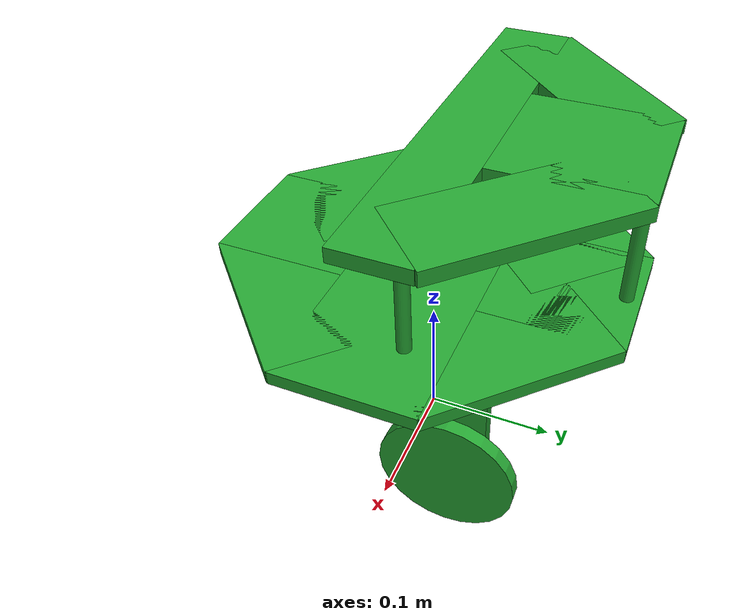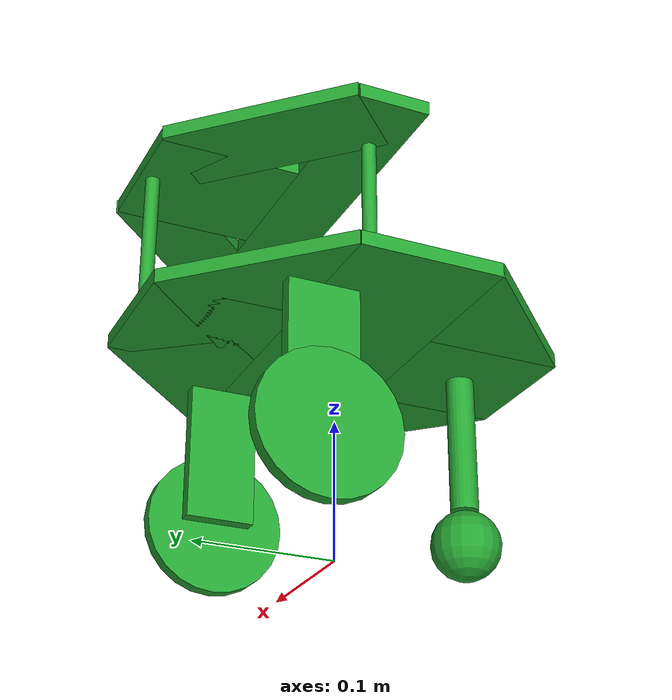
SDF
<?xml version='1.0'?>
<sdf version='1.6'>
  <model name='devRobot'>
    <link name='base'>
      <pose frame=''>0 0 0.155 0 -0 0</pose>
      <inertial>
        <mass>1.5</mass>
        <inertia>
          <ixx>0.166667</ixx>
          <ixy>0</ixy>
          <ixz>0</ixz>
          <iyy>0.166667</iyy>
          <iyz>0</iyz>
          <izz>0.166667</izz>
        </inertia>
        <pose frame=''>0 0 0 0 -0 0</pose>
      </inertial>
      <self_collide>0</self_collide>
      <kinematic>0</kinematic>
      <gravity>1</gravity>
      <visual name='visual'>
        <pose frame=''>0 0 0 0 -0 0</pose>
        <geometry>
          <box>
            <size>0.3 0.1 0.01</size>
          </box>
        </geometry>
        <material>
          <lighting>1</lighting>
          <script>
            <uri>file://media/materials/scripts/gazebo.material</uri>
            <name>Gazebo/Green</name>
          </script>
          <shader type='pixel'>
            <normal_map>__default__</normal_map>
          </shader>
          <ambient>0 0.3 0 1</ambient>
          <diffuse>0 0.7 0 1</diffuse>
          <specular>0 0.01 0 1</specular>
          <emissive>0 0 0 1</emissive>
        </material>
        <transparency>0</transparency>
        <cast_shadows>1</cast_shadows>
      </visual>
      <collision name='collision'>
        <laser_retro>0</laser_retro>
        <max_contacts>10</max_contacts>
        <pose frame=''>0 0 0 0 -0 0</pose>
        <geometry>
          <box>
            <size>0.3 0.1 0.01</size>
          </box>
        </geometry>
        <surface>
          <friction>
            <ode>
              <mu>1</mu>
              <mu2>1</mu2>
              <fdir1>0 0 0</fdir1>
              <slip1>0</slip1>
              <slip2>0</slip2>
            </ode>
            <torsional>
              <coefficient>1</coefficient>
              <patch_radius>0</patch_radius>
              <surface_radius>0</surface_radius>
              <use_patch_radius>1</use_patch_radius>
              <ode>
                <slip>0</slip>
              </ode>
            </torsional>
          </friction>
          <bounce>
            <restitution_coefficient>0</restitution_coefficient>
            <threshold>1e+06</threshold>
          </bounce>
          <contact>
            <collide_without_contact>0</collide_without_contact>
            <collide_without_contact_bitmask>1</collide_without_contact_bitmask>
            <collide_bitmask>1</collide_bitmask>
            <ode>
              <soft_cfm>0</soft_cfm>
              <soft_erp>0.2</soft_erp>
              <kp>1e+13</kp>
              <kd>1</kd>
              <max_vel>0.01</max_vel>
              <min_depth>0</min_depth>
            </ode>
            <bullet>
              <split_impulse>1</split_impulse>
              <split_impulse_penetration_threshold>-0.01</split_impulse_penetration_threshold>
              <soft_cfm>0</soft_cfm>
              <soft_erp>0.2</soft_erp>
              <kp>1e+13</kp>
              <kd>1</kd>
            </bullet>
          </contact>
        </surface>
      </collision>
    </link>
    <link name='back'>
      <pose frame=''>-0 -0.1 0.155 0 -0 0</pose>
      <inertial>
        <mass>2</mass>
        <inertia>
          <ixx>0.166667</ixx>
          <ixy>0</ixy>
          <ixz>0</ixz>
          <iyy>0.166667</iyy>
          <iyz>0</iyz>
          <izz>0.166667</izz>
        </inertia>
        <pose frame=''>0 0 0 0 -0 0</pose>
      </inertial>
      <self_collide>0</self_collide>
      <kinematic>0</kinematic>
      <visual name='visual'>
        <pose frame=''>0 0 0 0 -0 0</pose>
        <geometry>
          <box>
            <size>0.1 0.1 0.01</size>
          </box>
        </geometry>
        <material>
          <lighting>1</lighting>
          <script>
            <uri>file://media/materials/scripts/gazebo.material</uri>
            <name>Gazebo/Green</name>
          </script>
          <shader type='pixel'>
            <normal_map>__default__</normal_map>
          </shader>
          <ambient>0 0.3 0 1</ambient>
          <diffuse>0 0.7 0 1</diffuse>
          <specular>0 0.01 0 1</specular>
          <emissive>0 0 0 1</emissive>
        </material>
        <transparency>0</transparency>
        <cast_shadows>1</cast_shadows>
      </visual>
      <collision name='collision'>
        <laser_retro>0</laser_retro>
        <max_contacts>10</max_contacts>
        <pose frame=''>0 0 0 0 -0 0</pose>
        <geometry>
          <box>
            <size>0.1 0.1 0.01</size>
          </box>
        </geometry>
        <surface>
          <friction>
            <ode>
              <mu>1</mu>
              <mu2>1</mu2>
              <fdir1>0 0 0</fdir1>
              <slip1>0</slip1>
              <slip2>0</slip2>
            </ode>
            <torsional>
              <coefficient>1</coefficient>
              <patch_radius>0</patch_radius>
              <surface_radius>0</surface_radius>
              <use_patch_radius>1</use_patch_radius>
              <ode>
                <slip>0</slip>
              </ode>
            </torsional>
          </friction>
          <bounce>
            <restitution_coefficient>0</restitution_coefficient>
            <threshold>1e+06</threshold>
          </bounce>
          <contact>
            <collide_without_contact>0</collide_without_contact>
            <collide_without_contact_bitmask>1</collide_without_contact_bitmask>
            <collide_bitmask>1</collide_bitmask>
            <ode>
              <soft_cfm>0</soft_cfm>
              <soft_erp>0.2</soft_erp>
              <kp>1e+13</kp>
              <kd>1</kd>
              <max_vel>0.01</max_vel>
              <min_depth>0</min_depth>
            </ode>
            <bullet>
              <split_impulse>1</split_impulse>
              <split_impulse_penetration_threshold>-0.01</split_impulse_penetration_threshold>
              <soft_cfm>0</soft_cfm>
              <soft_erp>0.2</soft_erp>
              <kp>1e+13</kp>
              <kd>1</kd>
            </bullet>
          </contact>
        </surface>
      </collision>
    </link>
    <link name='backLeft'>
      <pose frame=''>-0.065 -0.065 0.155 0 0 -0.78535</pose>
      <inertial>
        <mass>0.1</mass>
        <inertia>
          <ixx>0.166667</ixx>
          <ixy>0</ixy>
          <ixz>0</ixz>
          <iyy>0.166667</iyy>
          <iyz>0</iyz>
          <izz>0.166667</izz>
        </inertia>
        <pose frame=''>0 0 0 0 -0 0</pose>
      </inertial>
      <self_collide>0</self_collide>
      <kinematic>0</kinematic>
      <visual name='visual'>
        <pose frame=''>0 0 0 0 -0 0</pose>
        <geometry>
          <box>
            <size>0.14 0.1 0.01</size>
          </box>
        </geometry>
        <material>
          <lighting>1</lighting>
          <script>
            <uri>file://media/materials/scripts/gazebo.material</uri>
            <name>Gazebo/Green</name>
          </script>
          <shader type='pixel'>
            <normal_map>__default__</normal_map>
          </shader>
          <ambient>0 0.3 0 1</ambient>
          <diffuse>0 0.7 0 1</diffuse>
          <specular>0 0.01 0 1</specular>
          <emissive>0 0 0 1</emissive>
        </material>
        <transparency>0</transparency>
        <cast_shadows>1</cast_shadows>
      </visual>
      <collision name='collision'>
        <laser_retro>0</laser_retro>
        <max_contacts>10</max_contacts>
        <pose frame=''>0 0 0 0 -0 0</pose>
        <geometry>
          <box>
            <size>0.14 0.1 0.01</size>
          </box>
        </geometry>
        <surface>
          <friction>
            <ode>
              <mu>1</mu>
              <mu2>1</mu2>
              <fdir1>0 0 0</fdir1>
              <slip1>0</slip1>
              <slip2>0</slip2>
            </ode>
            <torsional>
              <coefficient>1</coefficient>
              <patch_radius>0</patch_radius>
              <surface_radius>0</surface_radius>
              <use_patch_radius>1</use_patch_radius>
              <ode>
                <slip>0</slip>
              </ode>
            </torsional>
          </friction>
          <bounce>
            <restitution_coefficient>0</restitution_coefficient>
            <threshold>1e+06</threshold>
          </bounce>
          <contact>
            <collide_without_contact>0</collide_without_contact>
            <collide_without_contact_bitmask>1</collide_without_contact_bitmask>
            <collide_bitmask>1</collide_bitmask>
            <ode>
              <soft_cfm>0</soft_cfm>
              <soft_erp>0.2</soft_erp>
              <kp>1e+13</kp>
              <kd>1</kd>
              <max_vel>0.01</max_vel>
              <min_depth>0</min_depth>
            </ode>
            <bullet>
              <split_impulse>1</split_impulse>
              <split_impulse_penetration_threshold>-0.01</split_impulse_penetration_threshold>
              <soft_cfm>0</soft_cfm>
              <soft_erp>0.2</soft_erp>
              <kp>1e+13</kp>
              <kd>1</kd>
            </bullet>
          </contact>
        </surface>
      </collision>
    </link>
    <link name='backRight'>
      <pose frame=''>0.065 -0.065 0.155 0 -0 0.78535</pose>
      <inertial>
        <mass>0.1</mass>
        <inertia>
          <ixx>0.166667</ixx>
          <ixy>0</ixy>
          <ixz>0</ixz>
          <iyy>0.166667</iyy>
          <iyz>0</iyz>
          <izz>0.166667</izz>
        </inertia>
        <pose frame=''>0 0 0 0 -0 0</pose>
      </inertial>
      <self_collide>0</self_collide>
      <kinematic>0</kinematic>
      <visual name='visual'>
        <pose frame=''>0 0 0 0 -0 0</pose>
        <geometry>
          <box>
            <size>0.14 0.1 0.01</size>
          </box>
        </geometry>
        <material>
          <lighting>1</lighting>
          <script>
            <uri>file://media/materials/scripts/gazebo.material</uri>
            <name>Gazebo/Green</name>
          </script>
          <shader type='pixel'>
            <normal_map>__default__</normal_map>
          </shader>
          <ambient>0 0.3 0 1</ambient>
          <diffuse>0 0.7 0 1</diffuse>
          <specular>0 0.01 0 1</specular>
          <emissive>0 0 0 1</emissive>
        </material>
        <transparency>0</transparency>
        <cast_shadows>1</cast_shadows>
      </visual>
      <collision name='collision'>
        <laser_retro>0</laser_retro>
        <max_contacts>10</max_contacts>
        <pose frame=''>0 0 0 0 -0 0</pose>
        <geometry>
          <box>
            <size>0.14 0.1 0.01</size>
          </box>
        </geometry>
        <surface>
          <friction>
            <ode>
              <mu>1</mu>
              <mu2>1</mu2>
              <fdir1>0 0 0</fdir1>
              <slip1>0</slip1>
              <slip2>0</slip2>
            </ode>
            <torsional>
              <coefficient>1</coefficient>
              <patch_radius>0</patch_radius>
              <surface_radius>0</surface_radius>
              <use_patch_radius>1</use_patch_radius>
              <ode>
                <slip>0</slip>
              </ode>
            </torsional>
          </friction>
          <bounce>
            <restitution_coefficient>0</restitution_coefficient>
            <threshold>1e+06</threshold>
          </bounce>
          <contact>
            <collide_without_contact>0</collide_without_contact>
            <collide_without_contact_bitmask>1</collide_without_contact_bitmask>
            <collide_bitmask>1</collide_bitmask>
            <ode>
              <soft_cfm>0</soft_cfm>
              <soft_erp>0.2</soft_erp>
              <kp>1e+13</kp>
              <kd>1</kd>
              <max_vel>0.01</max_vel>
              <min_depth>0</min_depth>
            </ode>
            <bullet>
              <split_impulse>1</split_impulse>
              <split_impulse_penetration_threshold>-0.01</split_impulse_penetration_threshold>
              <soft_cfm>0</soft_cfm>
              <soft_erp>0.2</soft_erp>
              <kp>1e+13</kp>
              <kd>1</kd>
            </bullet>
          </contact>
        </surface>
      </collision>
    </link>
    <link name='front'>
      <pose frame=''>-0 0.1 0.155 0 -0 0</pose>
      <inertial>
        <mass>0.1</mass>
        <inertia>
          <ixx>0.166667</ixx>
          <ixy>0</ixy>
          <ixz>0</ixz>
          <iyy>0.166667</iyy>
          <iyz>0</iyz>
          <izz>0.166667</izz>
        </inertia>
        <pose frame=''>0 0 0 0 -0 0</pose>
      </inertial>
      <self_collide>0</self_collide>
      <kinematic>0</kinematic>
      <visual name='visual'>
        <pose frame=''>0 0 0 0 -0 0</pose>
        <geometry>
          <box>
            <size>0.1 0.1 0.01</size>
          </box>
        </geometry>
        <material>
          <lighting>1</lighting>
          <script>
            <uri>file://media/materials/scripts/gazebo.material</uri>
            <name>Gazebo/Green</name>
          </script>
          <shader type='pixel'>
            <normal_map>__default__</normal_map>
          </shader>
          <ambient>0 0.3 0 1</ambient>
          <diffuse>0 0.7 0 1</diffuse>
          <specular>0 0.01 0 1</specular>
          <emissive>0 0 0 1</emissive>
        </material>
        <transparency>0</transparency>
        <cast_shadows>1</cast_shadows>
      </visual>
      <collision name='collision'>
        <laser_retro>0</laser_retro>
        <max_contacts>10</max_contacts>
        <pose frame=''>0 0 0 0 -0 0</pose>
        <geometry>
          <box>
            <size>0.1 0.1 0.01</size>
          </box>
        </geometry>
        <surface>
          <friction>
            <ode>
              <mu>1</mu>
              <mu2>1</mu2>
              <fdir1>0 0 0</fdir1>
              <slip1>0</slip1>
              <slip2>0</slip2>
            </ode>
            <torsional>
              <coefficient>1</coefficient>
              <patch_radius>0</patch_radius>
              <surface_radius>0</surface_radius>
              <use_patch_radius>1</use_patch_radius>
              <ode>
                <slip>0</slip>
              </ode>
            </torsional>
          </friction>
          <bounce>
            <restitution_coefficient>0</restitution_coefficient>
            <threshold>1e+06</threshold>
          </bounce>
          <contact>
            <collide_without_contact>0</collide_without_contact>
            <collide_without_contact_bitmask>1</collide_without_contact_bitmask>
            <collide_bitmask>1</collide_bitmask>
            <ode>
              <soft_cfm>0</soft_cfm>
              <soft_erp>0.2</soft_erp>
              <kp>1e+13</kp>
              <kd>1</kd>
              <max_vel>0.01</max_vel>
              <min_depth>0</min_depth>
            </ode>
            <bullet>
              <split_impulse>1</split_impulse>
              <split_impulse_penetration_threshold>-0.01</split_impulse_penetration_threshold>
              <soft_cfm>0</soft_cfm>
              <soft_erp>0.2</soft_erp>
              <kp>1e+13</kp>
              <kd>1</kd>
            </bullet>
          </contact>
        </surface>
      </collision>
    </link>
    <link name='frontLeft'>
      <pose frame=''>-0.065 0.065 0.155 0 -0 0.78535</pose>
      <inertial>
        <mass>0.1</mass>
        <inertia>
          <ixx>0.166667</ixx>
          <ixy>0</ixy>
          <ixz>0</ixz>
          <iyy>0.166667</iyy>
          <iyz>0</iyz>
          <izz>0.166667</izz>
        </inertia>
        <pose frame=''>0 0 0 0 -0 0</pose>
      </inertial>
      <self_collide>0</self_collide>
      <kinematic>0</kinematic>
      <visual name='visual'>
        <pose frame=''>0 0 0 0 -0 0</pose>
        <geometry>
          <box>
            <size>0.14 0.1 0.01</size>
          </box>
        </geometry>
        <material>
          <lighting>1</lighting>
          <script>
            <uri>file://media/materials/scripts/gazebo.material</uri>
            <name>Gazebo/Green</name>
          </script>
          <shader type='pixel'>
            <normal_map>__default__</normal_map>
          </shader>
          <ambient>0 0.3 0 1</ambient>
          <diffuse>0 0.7 0 1</diffuse>
          <specular>0 0.01 0 1</specular>
          <emissive>0 0 0 1</emissive>
        </material>
        <transparency>0</transparency>
        <cast_shadows>1</cast_shadows>
      </visual>
      <collision name='collision'>
        <laser_retro>0</laser_retro>
        <max_contacts>10</max_contacts>
        <pose frame=''>0 0 0 0 -0 0</pose>
        <geometry>
          <box>
            <size>0.14 0.1 0.01</size>
          </box>
        </geometry>
        <surface>
          <friction>
            <ode>
              <mu>1</mu>
              <mu2>1</mu2>
              <fdir1>0 0 0</fdir1>
              <slip1>0</slip1>
              <slip2>0</slip2>
            </ode>
            <torsional>
              <coefficient>1</coefficient>
              <patch_radius>0</patch_radius>
              <surface_radius>0</surface_radius>
              <use_patch_radius>1</use_patch_radius>
              <ode>
                <slip>0</slip>
              </ode>
            </torsional>
          </friction>
          <bounce>
            <restitution_coefficient>0</restitution_coefficient>
            <threshold>1e+06</threshold>
          </bounce>
          <contact>
            <collide_without_contact>0</collide_without_contact>
            <collide_without_contact_bitmask>1</collide_without_contact_bitmask>
            <collide_bitmask>1</collide_bitmask>
            <ode>
              <soft_cfm>0</soft_cfm>
              <soft_erp>0.2</soft_erp>
              <kp>1e+13</kp>
              <kd>1</kd>
              <max_vel>0.01</max_vel>
              <min_depth>0</min_depth>
            </ode>
            <bullet>
              <split_impulse>1</split_impulse>
              <split_impulse_penetration_threshold>-0.01</split_impulse_penetration_threshold>
              <soft_cfm>0</soft_cfm>
              <soft_erp>0.2</soft_erp>
              <kp>1e+13</kp>
              <kd>1</kd>
            </bullet>
          </contact>
        </surface>
      </collision>
    </link>
    <link name='frontRight'>
      <pose frame=''>0.065 0.065 0.155 0 0 -0.78535</pose>
      <inertial>
        <mass>0.1</mass>
        <inertia>
          <ixx>0.166667</ixx>
          <ixy>0</ixy>
          <ixz>0</ixz>
          <iyy>0.166667</iyy>
          <iyz>0</iyz>
          <izz>0.166667</izz>
        </inertia>
        <pose frame=''>0 0 0 0 -0 0</pose>
      </inertial>
      <self_collide>0</self_collide>
      <kinematic>0</kinematic>
      <visual name='visual'>
        <pose frame=''>0 0 0 0 -0 0</pose>
        <geometry>
          <box>
            <size>0.14 0.1 0.01</size>
          </box>
        </geometry>
        <material>
          <lighting>1</lighting>
          <script>
            <uri>file://media/materials/scripts/gazebo.material</uri>
            <name>Gazebo/Green</name>
          </script>
          <shader type='pixel'>
            <normal_map>__default__</normal_map>
          </shader>
          <ambient>0 0.3 0 1</ambient>
          <diffuse>0 0.7 0 1</diffuse>
          <specular>0 0.01 0 1</specular>
          <emissive>0 0 0 1</emissive>
        </material>
        <transparency>0</transparency>
        <cast_shadows>1</cast_shadows>
      </visual>
      <collision name='collision'>
        <laser_retro>0</laser_retro>
        <max_contacts>10</max_contacts>
        <pose frame=''>0 0 0 0 -0 0</pose>
        <geometry>
          <box>
            <size>0.14 0.1 0.01</size>
          </box>
        </geometry>
        <surface>
          <friction>
            <ode>
              <mu>1</mu>
              <mu2>1</mu2>
              <fdir1>0 0 0</fdir1>
              <slip1>0</slip1>
              <slip2>0</slip2>
            </ode>
            <torsional>
              <coefficient>1</coefficient>
              <patch_radius>0</patch_radius>
              <surface_radius>0</surface_radius>
              <use_patch_radius>1</use_patch_radius>
              <ode>
                <slip>0</slip>
              </ode>
            </torsional>
          </friction>
          <bounce>
            <restitution_coefficient>0</restitution_coefficient>
            <threshold>1e+06</threshold>
          </bounce>
          <contact>
            <collide_without_contact>0</collide_without_contact>
            <collide_without_contact_bitmask>1</collide_without_contact_bitmask>
            <collide_bitmask>1</collide_bitmask>
            <ode>
              <soft_cfm>0</soft_cfm>
              <soft_erp>0.2</soft_erp>
              <kp>1e+13</kp>
              <kd>1</kd>
              <max_vel>0.01</max_vel>
              <min_depth>0</min_depth>
            </ode>
            <bullet>
              <split_impulse>1</split_impulse>
              <split_impulse_penetration_threshold>-0.01</split_impulse_penetration_threshold>
              <soft_cfm>0</soft_cfm>
              <soft_erp>0.2</soft_erp>
              <kp>1e+13</kp>
              <kd>1</kd>
            </bullet>
          </contact>
        </surface>
      </collision>
    </link>
    <link name='link_0'>
      <pose frame=''>0.1 0.05 0.05 -3e-06 1.5707 -3e-06</pose>
      <inertial>
        <mass>1</mass>
        <inertia>
          <ixx>0.145833</ixx>
          <ixy>0</ixy>
          <ixz>0</ixz>
          <iyy>0.145833</iyy>
          <iyz>0</iyz>
          <izz>0.125</izz>
        </inertia>
        <pose frame=''>0 0 0 0 -0 0</pose>
      </inertial>
      <self_collide>0</self_collide>
      <kinematic>0</kinematic>
      <visual name='visual'>
        <pose frame=''>0 0 0 0 -0 0</pose>
        <geometry>
          <cylinder>
            <radius>0.05</radius>
            <length>0.01</length>
          </cylinder>
        </geometry>
        <material>
          <lighting>1</lighting>
          <script>
            <uri>file://media/materials/scripts/gazebo.material</uri>
            <name>Gazebo/Green</name>
          </script>
          <shader type='pixel'>
            <normal_map>__default__</normal_map>
          </shader>
          <ambient>0 0.3 0 1</ambient>
          <diffuse>0 0.7 0 1</diffuse>
          <specular>0 0.01 0 1</specular>
          <emissive>0 0 0 1</emissive>
        </material>
        <transparency>0</transparency>
        <cast_shadows>1</cast_shadows>
      </visual>
      <collision name='collision'>
        <laser_retro>0</laser_retro>
        <max_contacts>10</max_contacts>
        <pose frame=''>0 0 0 0 -0 0</pose>
        <geometry>
          <cylinder>
            <radius>0.05</radius>
            <length>0.01</length>
          </cylinder>
        </geometry>
        <surface>
          <friction>
            <ode>
              <mu>1</mu>
              <mu2>1</mu2>
              <fdir1>0 0 0</fdir1>
              <slip1>0</slip1>
              <slip2>0</slip2>
            </ode>
            <torsional>
              <coefficient>1</coefficient>
              <patch_radius>0</patch_radius>
              <surface_radius>0</surface_radius>
              <use_patch_radius>1</use_patch_radius>
              <ode>
                <slip>0</slip>
              </ode>
            </torsional>
          </friction>
          <bounce>
            <restitution_coefficient>0</restitution_coefficient>
            <threshold>1e+06</threshold>
          </bounce>
          <contact>
            <collide_without_contact>0</collide_without_contact>
            <collide_without_contact_bitmask>1</collide_without_contact_bitmask>
            <collide_bitmask>1</collide_bitmask>
            <ode>
              <soft_cfm>0</soft_cfm>
              <soft_erp>0.2</soft_erp>
              <kp>1e+13</kp>
              <kd>1</kd>
              <max_vel>0.01</max_vel>
              <min_depth>0</min_depth>
            </ode>
            <bullet>
              <split_impulse>1</split_impulse>
              <split_impulse_penetration_threshold>-0.01</split_impulse_penetration_threshold>
              <soft_cfm>0</soft_cfm>
              <soft_erp>0.2</soft_erp>
              <kp>1e+13</kp>
              <kd>1</kd>
            </bullet>
          </contact>
        </surface>
      </collision>
    </link>
    <link name='link_0_clone'>
      <pose frame=''>-0.1 0.05 0.05 -3e-06 1.5707 -3e-06</pose>
      <inertial>
        <mass>1</mass>
        <inertia>
          <ixx>0.145833</ixx>
          <ixy>0</ixy>
          <ixz>0</ixz>
          <iyy>0.145833</iyy>
          <iyz>0</iyz>
          <izz>0.125</izz>
        </inertia>
        <pose frame=''>0 0 0 0 -0 0</pose>
      </inertial>
      <self_collide>0</self_collide>
      <kinematic>0</kinematic>
      <visual name='visual'>
        <pose frame=''>0 0 0 0 -0 0</pose>
        <geometry>
          <cylinder>
            <radius>0.05</radius>
            <length>0.01</length>
          </cylinder>
        </geometry>
        <material>
          <lighting>1</lighting>
          <script>
            <uri>file://media/materials/scripts/gazebo.material</uri>
            <name>Gazebo/Green</name>
          </script>
          <shader type='pixel'>
            <normal_map>__default__</normal_map>
          </shader>
          <ambient>0 0.3 0 1</ambient>
          <diffuse>0 0.7 0 1</diffuse>
          <specular>0 0.01 0 1</specular>
          <emissive>0 0 0 1</emissive>
        </material>
        <transparency>0</transparency>
        <cast_shadows>1</cast_shadows>
      </visual>
      <collision name='collision'>
        <laser_retro>0</laser_retro>
        <max_contacts>10</max_contacts>
        <pose frame=''>0 0 0 0 -0 0</pose>
        <geometry>
          <cylinder>
            <radius>0.05</radius>
            <length>0.01</length>
          </cylinder>
        </geometry>
        <surface>
          <friction>
            <ode>
              <mu>1</mu>
              <mu2>1</mu2>
              <fdir1>0 0 0</fdir1>
              <slip1>0</slip1>
              <slip2>0</slip2>
            </ode>
            <torsional>
              <coefficient>1</coefficient>
              <patch_radius>0</patch_radius>
              <surface_radius>0</surface_radius>
              <use_patch_radius>1</use_patch_radius>
              <ode>
                <slip>0</slip>
              </ode>
            </torsional>
          </friction>
          <bounce>
            <restitution_coefficient>0</restitution_coefficient>
            <threshold>1e+06</threshold>
          </bounce>
          <contact>
            <collide_without_contact>0</collide_without_contact>
            <collide_without_contact_bitmask>1</collide_without_contact_bitmask>
            <collide_bitmask>1</collide_bitmask>
            <ode>
              <soft_cfm>0</soft_cfm>
              <soft_erp>0.2</soft_erp>
              <kp>1e+13</kp>
              <kd>1</kd>
              <max_vel>0.01</max_vel>
              <min_depth>0</min_depth>
            </ode>
            <bullet>
              <split_impulse>1</split_impulse>
              <split_impulse_penetration_threshold>-0.01</split_impulse_penetration_threshold>
              <soft_cfm>0</soft_cfm>
              <soft_erp>0.2</soft_erp>
              <kp>1e+13</kp>
              <kd>1</kd>
            </bullet>
          </contact>
        </surface>
      </collision>
    </link>
    <link name='link_1'>
      <pose frame=''>0.09 0.05 0.1 0 -0 0</pose>
      <inertial>
        <mass>1</mass>
        <inertia>
          <ixx>0.166667</ixx>
          <ixy>0</ixy>
          <ixz>0</ixz>
          <iyy>0.166667</iyy>
          <iyz>0</iyz>
          <izz>0.166667</izz>
        </inertia>
        <pose frame=''>0 0 0 0 -0 0</pose>
      </inertial>
      <self_collide>0</self_collide>
      <kinematic>0</kinematic>
      <visual name='visual'>
        <pose frame=''>0 0 0 0 -0 0</pose>
        <geometry>
          <box>
            <size>0.01 0.05 0.1</size>
          </box>
        </geometry>
        <material>
          <lighting>1</lighting>
          <script>
            <uri>file://media/materials/scripts/gazebo.material</uri>
            <name>Gazebo/Green</name>
          </script>
          <shader type='pixel'>
            <normal_map>__default__</normal_map>
          </shader>
          <ambient>0 0.3 0 1</ambient>
          <diffuse>0 0.7 0 1</diffuse>
          <specular>0 0.01 0 1</specular>
          <emissive>0 0 0 1</emissive>
        </material>
        <transparency>0</transparency>
        <cast_shadows>1</cast_shadows>
      </visual>
      <collision name='collision'>
        <laser_retro>0</laser_retro>
        <max_contacts>10</max_contacts>
        <pose frame=''>0 0 0 0 -0 0</pose>
        <geometry>
          <box>
            <size>0.01 0.05 0.1</size>
          </box>
        </geometry>
        <surface>
          <friction>
            <ode>
              <mu>1</mu>
              <mu2>1</mu2>
              <fdir1>0 0 0</fdir1>
              <slip1>0</slip1>
              <slip2>0</slip2>
            </ode>
            <torsional>
              <coefficient>1</coefficient>
              <patch_radius>0</patch_radius>
              <surface_radius>0</surface_radius>
              <use_patch_radius>1</use_patch_radius>
              <ode>
                <slip>0</slip>
              </ode>
            </torsional>
          </friction>
          <bounce>
            <restitution_coefficient>0</restitution_coefficient>
            <threshold>1e+06</threshold>
          </bounce>
          <contact>
            <collide_without_contact>0</collide_without_contact>
            <collide_without_contact_bitmask>1</collide_without_contact_bitmask>
            <collide_bitmask>1</collide_bitmask>
            <ode>
              <soft_cfm>0</soft_cfm>
              <soft_erp>0.2</soft_erp>
              <kp>1e+13</kp>
              <kd>1</kd>
              <max_vel>0.01</max_vel>
              <min_depth>0</min_depth>
            </ode>
            <bullet>
              <split_impulse>1</split_impulse>
              <split_impulse_penetration_threshold>-0.01</split_impulse_penetration_threshold>
              <soft_cfm>0</soft_cfm>
              <soft_erp>0.2</soft_erp>
              <kp>1e+13</kp>
              <kd>1</kd>
            </bullet>
          </contact>
        </surface>
      </collision>
    </link>
    <link name='link_1_clone'>
      <pose frame=''>-0.09 0.05 0.1 0 -0 0</pose>
      <inertial>
        <mass>1</mass>
        <inertia>
          <ixx>0.166667</ixx>
          <ixy>0</ixy>
          <ixz>0</ixz>
          <iyy>0.166667</iyy>
          <iyz>0</iyz>
          <izz>0.166667</izz>
        </inertia>
        <pose frame=''>0 0 0 0 -0 0</pose>
      </inertial>
      <self_collide>0</self_collide>
      <kinematic>0</kinematic>
      <visual name='visual'>
        <pose frame=''>0 0 0 0 -0 0</pose>
        <geometry>
          <box>
            <size>0.01 0.05 0.1</size>
          </box>
        </geometry>
        <material>
          <lighting>1</lighting>
          <script>
            <uri>file://media/materials/scripts/gazebo.material</uri>
            <name>Gazebo/Green</name>
          </script>
          <shader type='pixel'>
            <normal_map>__default__</normal_map>
          </shader>
          <ambient>0 0.3 0 1</ambient>
          <diffuse>0 0.7 0 1</diffuse>
          <specular>0 0.01 0 1</specular>
          <emissive>0 0 0 1</emissive>
        </material>
        <transparency>0</transparency>
        <cast_shadows>1</cast_shadows>
      </visual>
      <collision name='collision'>
        <laser_retro>0</laser_retro>
        <max_contacts>10</max_contacts>
        <pose frame=''>0 0 0 0 -0 0</pose>
        <geometry>
          <box>
            <size>0.01 0.05 0.1</size>
          </box>
        </geometry>
        <surface>
          <friction>
            <ode>
              <mu>1</mu>
              <mu2>1</mu2>
              <fdir1>0 0 0</fdir1>
              <slip1>0</slip1>
              <slip2>0</slip2>
            </ode>
            <torsional>
              <coefficient>1</coefficient>
              <patch_radius>0</patch_radius>
              <surface_radius>0</surface_radius>
              <use_patch_radius>1</use_patch_radius>
              <ode>
                <slip>0</slip>
              </ode>
            </torsional>
          </friction>
          <bounce>
            <restitution_coefficient>0</restitution_coefficient>
            <threshold>1e+06</threshold>
          </bounce>
          <contact>
            <collide_without_contact>0</collide_without_contact>
            <collide_without_contact_bitmask>1</collide_without_contact_bitmask>
            <collide_bitmask>1</collide_bitmask>
            <ode>
              <soft_cfm>0</soft_cfm>
              <soft_erp>0.2</soft_erp>
              <kp>1e+13</kp>
              <kd>1</kd>
              <max_vel>0.01</max_vel>
              <min_depth>0</min_depth>
            </ode>
            <bullet>
              <split_impulse>1</split_impulse>
              <split_impulse_penetration_threshold>-0.01</split_impulse_penetration_threshold>
              <soft_cfm>0</soft_cfm>
              <soft_erp>0.2</soft_erp>
              <kp>1e+13</kp>
              <kd>1</kd>
            </bullet>
          </contact>
        </surface>
      </collision>
    </link>
    <link name='link_2'>
      <pose frame=''>-0 -0.1 0.1 0 -0 0</pose>
      <inertial>
        <mass>1</mass>
        <inertia>
          <ixx>0.145833</ixx>
          <ixy>0</ixy>
          <ixz>0</ixz>
          <iyy>0.145833</iyy>
          <iyz>0</iyz>
          <izz>0.125</izz>
        </inertia>
        <pose frame=''>0 0 0 0 -0 0</pose>
      </inertial>
      <self_collide>0</self_collide>
      <kinematic>0</kinematic>
      <visual name='visual'>
        <pose frame=''>0 0 0 0 -0 0</pose>
        <geometry>
          <cylinder>
            <radius>0.01</radius>
            <length>0.1</length>
          </cylinder>
        </geometry>
        <material>
          <lighting>1</lighting>
          <script>
            <uri>file://media/materials/scripts/gazebo.material</uri>
            <name>Gazebo/Green</name>
          </script>
          <shader type='pixel'>
            <normal_map>__default__</normal_map>
          </shader>
          <ambient>0 0.3 0 1</ambient>
          <diffuse>0 0.7 0 1</diffuse>
          <specular>0 0.01 0 1</specular>
          <emissive>0 0 0 1</emissive>
        </material>
        <transparency>0</transparency>
        <cast_shadows>1</cast_shadows>
      </visual>
      <collision name='collision'>
        <laser_retro>0</laser_retro>
        <max_contacts>10</max_contacts>
        <pose frame=''>0 0 0 0 -0 0</pose>
        <geometry>
          <cylinder>
            <radius>0.01</radius>
            <length>0.1</length>
          </cylinder>
        </geometry>
        <surface>
          <friction>
            <ode>
              <mu>1</mu>
              <mu2>1</mu2>
              <fdir1>0 0 0</fdir1>
              <slip1>0</slip1>
              <slip2>0</slip2>
            </ode>
            <torsional>
              <coefficient>1</coefficient>
              <patch_radius>0</patch_radius>
              <surface_radius>0</surface_radius>
              <use_patch_radius>1</use_patch_radius>
              <ode>
                <slip>0</slip>
              </ode>
            </torsional>
          </friction>
          <bounce>
            <restitution_coefficient>0</restitution_coefficient>
            <threshold>1e+06</threshold>
          </bounce>
          <contact>
            <collide_without_contact>0</collide_without_contact>
            <collide_without_contact_bitmask>1</collide_without_contact_bitmask>
            <collide_bitmask>1</collide_bitmask>
            <ode>
              <soft_cfm>0</soft_cfm>
              <soft_erp>0.2</soft_erp>
              <kp>1e+13</kp>
              <kd>1</kd>
              <max_vel>0.01</max_vel>
              <min_depth>0</min_depth>
            </ode>
            <bullet>
              <split_impulse>1</split_impulse>
              <split_impulse_penetration_threshold>-0.01</split_impulse_penetration_threshold>
              <soft_cfm>0</soft_cfm>
              <soft_erp>0.2</soft_erp>
              <kp>1e+13</kp>
              <kd>1</kd>
            </bullet>
          </contact>
        </surface>
      </collision>
    </link>
    <link name='link_3'>
      <pose frame=''>-0 -0.1 0.025 0 -0 0</pose>
      <inertial>
        <mass>1</mass>
        <inertia>
          <ixx>0.1</ixx>
          <ixy>0</ixy>
          <ixz>0</ixz>
          <iyy>0.1</iyy>
          <iyz>0</iyz>
          <izz>0.1</izz>
        </inertia>
        <pose frame=''>0 0 0 0 -0 0</pose>
      </inertial>
      <self_collide>0</self_collide>
      <kinematic>0</kinematic>
      <visual name='visual'>
        <pose frame=''>0 0 0 0 -0 0</pose>
        <geometry>
          <sphere>
            <radius>0.025</radius>
          </sphere>
        </geometry>
        <material>
          <lighting>1</lighting>
          <script>
            <uri>file://media/materials/scripts/gazebo.material</uri>
            <name>Gazebo/Green</name>
          </script>
          <shader type='pixel'>
            <normal_map>__default__</normal_map>
          </shader>
          <ambient>0 0.3 0 1</ambient>
          <diffuse>0 0.7 0 1</diffuse>
          <specular>0 0.01 0 1</specular>
          <emissive>0 0 0 1</emissive>
        </material>
        <transparency>0</transparency>
        <cast_shadows>1</cast_shadows>
      </visual>
      <collision name='collision'>
        <laser_retro>0</laser_retro>
        <max_contacts>10</max_contacts>
        <pose frame=''>0 0 0 0 -0 0</pose>
        <geometry>
          <sphere>
            <radius>0.025</radius>
          </sphere>
        </geometry>
        <surface>
          <friction>
            <ode>
              <mu>1</mu>
              <mu2>1</mu2>
              <fdir1>0 0 0</fdir1>
              <slip1>0</slip1>
              <slip2>0</slip2>
            </ode>
            <torsional>
              <coefficient>1</coefficient>
              <patch_radius>0</patch_radius>
              <surface_radius>0</surface_radius>
              <use_patch_radius>1</use_patch_radius>
              <ode>
                <slip>0</slip>
              </ode>
            </torsional>
          </friction>
          <bounce>
            <restitution_coefficient>0</restitution_coefficient>
            <threshold>1e+06</threshold>
          </bounce>
          <contact>
            <collide_without_contact>0</collide_without_contact>
            <collide_without_contact_bitmask>1</collide_without_contact_bitmask>
            <collide_bitmask>1</collide_bitmask>
            <ode>
              <soft_cfm>0</soft_cfm>
              <soft_erp>0.2</soft_erp>
              <kp>1e+13</kp>
              <kd>1</kd>
              <max_vel>0.01</max_vel>
              <min_depth>0</min_depth>
            </ode>
            <bullet>
              <split_impulse>1</split_impulse>
              <split_impulse_penetration_threshold>-0.01</split_impulse_penetration_threshold>
              <soft_cfm>0</soft_cfm>
              <soft_erp>0.2</soft_erp>
              <kp>1e+13</kp>
              <kd>1</kd>
            </bullet>
          </contact>
        </surface>
      </collision>
    </link>
    <link name='spaceholder'>
      <pose frame=''>0 0.14 0.21 0 -0 0</pose>
      <inertial>
        <mass>0.1</mass>
        <inertia>
          <ixx>0.145833</ixx>
          <ixy>0</ixy>
          <ixz>0</ixz>
          <iyy>0.145833</iyy>
          <iyz>0</iyz>
          <izz>0.125</izz>
        </inertia>
        <pose frame=''>0 0 0 0 -0 0</pose>
      </inertial>
      <self_collide>0</self_collide>
      <kinematic>0</kinematic>
      <visual name='visual'>
        <pose frame=''>0 0 0 0 -0 0</pose>
        <geometry>
          <cylinder>
            <radius>0.005</radius>
            <length>0.1</length>
          </cylinder>
        </geometry>
        <material>
          <lighting>1</lighting>
          <script>
            <uri>file://media/materials/scripts/gazebo.material</uri>
            <name>Gazebo/Green</name>
          </script>
          <shader type='pixel'>
            <normal_map>__default__</normal_map>
          </shader>
          <ambient>0 0.3 0 1</ambient>
          <diffuse>0 0.7 0 1</diffuse>
          <specular>0 0.01 0 1</specular>
          <emissive>0 0 0 1</emissive>
        </material>
        <transparency>0</transparency>
        <cast_shadows>1</cast_shadows>
      </visual>
      <collision name='collision'>
        <laser_retro>0</laser_retro>
        <max_contacts>10</max_contacts>
        <pose frame=''>0 0 0 0 -0 0</pose>
        <geometry>
          <cylinder>
            <radius>0.005</radius>
            <length>0.1</length>
          </cylinder>
        </geometry>
        <surface>
          <friction>
            <ode>
              <mu>1</mu>
              <mu2>1</mu2>
              <fdir1>0 0 0</fdir1>
              <slip1>0</slip1>
              <slip2>0</slip2>
            </ode>
            <torsional>
              <coefficient>1</coefficient>
              <patch_radius>0</patch_radius>
              <surface_radius>0</surface_radius>
              <use_patch_radius>1</use_patch_radius>
              <ode>
                <slip>0</slip>
              </ode>
            </torsional>
          </friction>
          <bounce>
            <restitution_coefficient>0</restitution_coefficient>
            <threshold>1e+06</threshold>
          </bounce>
          <contact>
            <collide_without_contact>0</collide_without_contact>
            <collide_without_contact_bitmask>1</collide_without_contact_bitmask>
            <collide_bitmask>1</collide_bitmask>
            <ode>
              <soft_cfm>0</soft_cfm>
              <soft_erp>0.2</soft_erp>
              <kp>1e+13</kp>
              <kd>1</kd>
              <max_vel>0.01</max_vel>
              <min_depth>0</min_depth>
            </ode>
            <bullet>
              <split_impulse>1</split_impulse>
              <split_impulse_penetration_threshold>-0.01</split_impulse_penetration_threshold>
              <soft_cfm>0</soft_cfm>
              <soft_erp>0.2</soft_erp>
              <kp>1e+13</kp>
              <kd>1</kd>
            </bullet>
          </contact>
        </surface>
      </collision>
    </link>
    <link name='spaceholder_1'>
      <pose frame=''>0.1 0.02 0.21 0 -0 0</pose>
      <inertial>
        <mass>0.1</mass>
        <inertia>
          <ixx>0.145833</ixx>
          <ixy>0</ixy>
          <ixz>0</ixz>
          <iyy>0.145833</iyy>
          <iyz>0</iyz>
          <izz>0.125</izz>
        </inertia>
        <pose frame=''>0 0 0 0 -0 0</pose>
      </inertial>
      <self_collide>0</self_collide>
      <kinematic>0</kinematic>
      <visual name='visual'>
        <pose frame=''>0 0 0 0 -0 0</pose>
        <geometry>
          <cylinder>
            <radius>0.005</radius>
            <length>0.1</length>
          </cylinder>
        </geometry>
        <material>
          <lighting>1</lighting>
          <script>
            <uri>file://media/materials/scripts/gazebo.material</uri>
            <name>Gazebo/Green</name>
          </script>
          <shader type='pixel'>
            <normal_map>__default__</normal_map>
          </shader>
          <ambient>0 0.3 0 1</ambient>
          <diffuse>0 0.7 0 1</diffuse>
          <specular>0 0.01 0 1</specular>
          <emissive>0 0 0 1</emissive>
        </material>
        <transparency>0</transparency>
        <cast_shadows>1</cast_shadows>
      </visual>
      <collision name='collision'>
        <laser_retro>0</laser_retro>
        <max_contacts>10</max_contacts>
        <pose frame=''>0 0 0 0 -0 0</pose>
        <geometry>
          <cylinder>
            <radius>0.005</radius>
            <length>0.1</length>
          </cylinder>
        </geometry>
        <surface>
          <friction>
            <ode>
              <mu>1</mu>
              <mu2>1</mu2>
              <fdir1>0 0 0</fdir1>
              <slip1>0</slip1>
              <slip2>0</slip2>
            </ode>
            <torsional>
              <coefficient>1</coefficient>
              <patch_radius>0</patch_radius>
              <surface_radius>0</surface_radius>
              <use_patch_radius>1</use_patch_radius>
              <ode>
                <slip>0</slip>
              </ode>
            </torsional>
          </friction>
          <bounce>
            <restitution_coefficient>0</restitution_coefficient>
            <threshold>1e+06</threshold>
          </bounce>
          <contact>
            <collide_without_contact>0</collide_without_contact>
            <collide_without_contact_bitmask>1</collide_without_contact_bitmask>
            <collide_bitmask>1</collide_bitmask>
            <ode>
              <soft_cfm>0</soft_cfm>
              <soft_erp>0.2</soft_erp>
              <kp>1e+13</kp>
              <kd>1</kd>
              <max_vel>0.01</max_vel>
              <min_depth>0</min_depth>
            </ode>
            <bullet>
              <split_impulse>1</split_impulse>
              <split_impulse_penetration_threshold>-0.01</split_impulse_penetration_threshold>
              <soft_cfm>0</soft_cfm>
              <soft_erp>0.2</soft_erp>
              <kp>1e+13</kp>
              <kd>1</kd>
            </bullet>
          </contact>
        </surface>
      </collision>
    </link>
    <link name='spaceholder_2'>
      <pose frame=''>-0.1 0.02 0.21 0 -0 0</pose>
      <inertial>
        <mass>0.1</mass>
        <inertia>
          <ixx>0.145833</ixx>
          <ixy>0</ixy>
          <ixz>0</ixz>
          <iyy>0.145833</iyy>
          <iyz>0</iyz>
          <izz>0.125</izz>
        </inertia>
        <pose frame=''>0 0 0 0 -0 0</pose>
      </inertial>
      <self_collide>0</self_collide>
      <kinematic>0</kinematic>
      <visual name='visual'>
        <pose frame=''>0 0 0 0 -0 0</pose>
        <geometry>
          <cylinder>
            <radius>0.005</radius>
            <length>0.1</length>
          </cylinder>
        </geometry>
        <material>
          <lighting>1</lighting>
          <script>
            <uri>file://media/materials/scripts/gazebo.material</uri>
            <name>Gazebo/Green</name>
          </script>
          <shader type='pixel'>
            <normal_map>__default__</normal_map>
          </shader>
          <ambient>0 0.3 0 1</ambient>
          <diffuse>0 0.7 0 1</diffuse>
          <specular>0 0.01 0 1</specular>
          <emissive>0 0 0 1</emissive>
        </material>
        <transparency>0</transparency>
        <cast_shadows>1</cast_shadows>
      </visual>
      <collision name='collision'>
        <laser_retro>0</laser_retro>
        <max_contacts>10</max_contacts>
        <pose frame=''>0 0 0 0 -0 0</pose>
        <geometry>
          <cylinder>
            <radius>0.005</radius>
            <length>0.1</length>
          </cylinder>
        </geometry>
        <surface>
          <friction>
            <ode>
              <mu>1</mu>
              <mu2>1</mu2>
              <fdir1>0 0 0</fdir1>
              <slip1>0</slip1>
              <slip2>0</slip2>
            </ode>
            <torsional>
              <coefficient>1</coefficient>
              <patch_radius>0</patch_radius>
              <surface_radius>0</surface_radius>
              <use_patch_radius>1</use_patch_radius>
              <ode>
                <slip>0</slip>
              </ode>
            </torsional>
          </friction>
          <bounce>
            <restitution_coefficient>0</restitution_coefficient>
            <threshold>1e+06</threshold>
          </bounce>
          <contact>
            <collide_without_contact>0</collide_without_contact>
            <collide_without_contact_bitmask>1</collide_without_contact_bitmask>
            <collide_bitmask>1</collide_bitmask>
            <ode>
              <soft_cfm>0</soft_cfm>
              <soft_erp>0.2</soft_erp>
              <kp>1e+13</kp>
              <kd>1</kd>
              <max_vel>0.01</max_vel>
              <min_depth>0</min_depth>
            </ode>
            <bullet>
              <split_impulse>1</split_impulse>
              <split_impulse_penetration_threshold>-0.01</split_impulse_penetration_threshold>
              <soft_cfm>0</soft_cfm>
              <soft_erp>0.2</soft_erp>
              <kp>1e+13</kp>
              <kd>1</kd>
            </bullet>
          </contact>
        </surface>
      </collision>
    </link>
    <link name='topFront'>
      <pose frame=''>-0 0.1 0.265 0 -0 0</pose>
      <inertial>
        <mass>0.1</mass>
        <inertia>
          <ixx>0.166667</ixx>
          <ixy>0</ixy>
          <ixz>0</ixz>
          <iyy>0.166667</iyy>
          <iyz>0</iyz>
          <izz>0.166667</izz>
        </inertia>
        <pose frame=''>0 0 0 0 -0 0</pose>
      </inertial>
      <self_collide>0</self_collide>
      <kinematic>0</kinematic>
      <visual name='visual'>
        <pose frame=''>0 0 0 0 -0 0</pose>
        <geometry>
          <box>
            <size>0.1 0.1 0.01</size>
          </box>
        </geometry>
        <material>
          <lighting>1</lighting>
          <script>
            <uri>file://media/materials/scripts/gazebo.material</uri>
            <name>Gazebo/Green</name>
          </script>
          <shader type='pixel'>
            <normal_map>__default__</normal_map>
          </shader>
          <ambient>0 0.3 0 1</ambient>
          <diffuse>0 0.7 0 1</diffuse>
          <specular>0 0.01 0 1</specular>
          <emissive>0 0 0 1</emissive>
        </material>
        <transparency>0</transparency>
        <cast_shadows>1</cast_shadows>
      </visual>
      <collision name='collision'>
        <laser_retro>0</laser_retro>
        <max_contacts>10</max_contacts>
        <pose frame=''>0 0 0 0 -0 0</pose>
        <geometry>
          <box>
            <size>0.1 0.1 0.01</size>
          </box>
        </geometry>
        <surface>
          <friction>
            <ode>
              <mu>1</mu>
              <mu2>1</mu2>
              <fdir1>0 0 0</fdir1>
              <slip1>0</slip1>
              <slip2>0</slip2>
            </ode>
            <torsional>
              <coefficient>1</coefficient>
              <patch_radius>0</patch_radius>
              <surface_radius>0</surface_radius>
              <use_patch_radius>1</use_patch_radius>
              <ode>
                <slip>0</slip>
              </ode>
            </torsional>
          </friction>
          <bounce>
            <restitution_coefficient>0</restitution_coefficient>
            <threshold>1e+06</threshold>
          </bounce>
          <contact>
            <collide_without_contact>0</collide_without_contact>
            <collide_without_contact_bitmask>1</collide_without_contact_bitmask>
            <collide_bitmask>1</collide_bitmask>
            <ode>
              <soft_cfm>0</soft_cfm>
              <soft_erp>0.2</soft_erp>
              <kp>1e+13</kp>
              <kd>1</kd>
              <max_vel>0.01</max_vel>
              <min_depth>0</min_depth>
            </ode>
            <bullet>
              <split_impulse>1</split_impulse>
              <split_impulse_penetration_threshold>-0.01</split_impulse_penetration_threshold>
              <soft_cfm>0</soft_cfm>
              <soft_erp>0.2</soft_erp>
              <kp>1e+13</kp>
              <kd>1</kd>
            </bullet>
          </contact>
        </surface>
      </collision>
    </link>
    <link name='topFrontLeft'>
      <pose frame=''>-0.08 0.08 0.265 0 -0 0.78535</pose>
      <inertial>
        <mass>0.1</mass>
        <inertia>
          <ixx>0.166667</ixx>
          <ixy>0</ixy>
          <ixz>0</ixz>
          <iyy>0.166667</iyy>
          <iyz>0</iyz>
          <izz>0.166667</izz>
        </inertia>
        <pose frame=''>0 0 0 0 -0 0</pose>
      </inertial>
      <self_collide>0</self_collide>
      <kinematic>0</kinematic>
      <visual name='visual'>
        <pose frame=''>0 0 0 0 -0 0</pose>
        <geometry>
          <box>
            <size>0.14 0.06 0.01</size>
          </box>
        </geometry>
        <material>
          <lighting>1</lighting>
          <script>
            <uri>file://media/materials/scripts/gazebo.material</uri>
            <name>Gazebo/Green</name>
          </script>
          <shader type='pixel'>
            <normal_map>__default__</normal_map>
          </shader>
          <ambient>0 0.3 0 1</ambient>
          <diffuse>0 0.7 0 1</diffuse>
          <specular>0 0.01 0 1</specular>
          <emissive>0 0 0 1</emissive>
        </material>
        <transparency>0</transparency>
        <cast_shadows>1</cast_shadows>
      </visual>
      <collision name='collision'>
        <laser_retro>0</laser_retro>
        <max_contacts>10</max_contacts>
        <pose frame=''>0 0 0 0 -0 0</pose>
        <geometry>
          <box>
            <size>0.14 0.06 0.01</size>
          </box>
        </geometry>
        <surface>
          <friction>
            <ode>
              <mu>1</mu>
              <mu2>1</mu2>
              <fdir1>0 0 0</fdir1>
              <slip1>0</slip1>
              <slip2>0</slip2>
            </ode>
            <torsional>
              <coefficient>1</coefficient>
              <patch_radius>0</patch_radius>
              <surface_radius>0</surface_radius>
              <use_patch_radius>1</use_patch_radius>
              <ode>
                <slip>0</slip>
              </ode>
            </torsional>
          </friction>
          <bounce>
            <restitution_coefficient>0</restitution_coefficient>
            <threshold>1e+06</threshold>
          </bounce>
          <contact>
            <collide_without_contact>0</collide_without_contact>
            <collide_without_contact_bitmask>1</collide_without_contact_bitmask>
            <collide_bitmask>1</collide_bitmask>
            <ode>
              <soft_cfm>0</soft_cfm>
              <soft_erp>0.2</soft_erp>
              <kp>1e+13</kp>
              <kd>1</kd>
              <max_vel>0.01</max_vel>
              <min_depth>0</min_depth>
            </ode>
            <bullet>
              <split_impulse>1</split_impulse>
              <split_impulse_penetration_threshold>-0.01</split_impulse_penetration_threshold>
              <soft_cfm>0</soft_cfm>
              <soft_erp>0.2</soft_erp>
              <kp>1e+13</kp>
              <kd>1</kd>
            </bullet>
          </contact>
        </surface>
      </collision>
    </link>
    <link name='topFrontRight'>
      <pose frame=''>0.08 0.08 0.265 0 0 -0.78535</pose>
      <inertial>
        <mass>0.1</mass>
        <inertia>
          <ixx>0.166667</ixx>
          <ixy>0</ixy>
          <ixz>0</ixz>
          <iyy>0.166667</iyy>
          <iyz>0</iyz>
          <izz>0.166667</izz>
        </inertia>
        <pose frame=''>0 0 0 0 -0 0</pose>
      </inertial>
      <self_collide>0</self_collide>
      <kinematic>0</kinematic>
      <visual name='visual'>
        <pose frame=''>0 0 0 0 -0 0</pose>
        <geometry>
          <box>
            <size>0.14 0.06 0.01</size>
          </box>
        </geometry>
        <material>
          <lighting>1</lighting>
          <script>
            <uri>file://media/materials/scripts/gazebo.material</uri>
            <name>Gazebo/Green</name>
          </script>
          <shader type='pixel'>
            <normal_map>__default__</normal_map>
          </shader>
          <ambient>0 0.3 0 1</ambient>
          <diffuse>0 0.7 0 1</diffuse>
          <specular>0 0.01 0 1</specular>
          <emissive>0 0 0 1</emissive>
        </material>
        <transparency>0</transparency>
        <cast_shadows>1</cast_shadows>
      </visual>
      <collision name='collision'>
        <laser_retro>0</laser_retro>
        <max_contacts>10</max_contacts>
        <pose frame=''>0 0 0 0 -0 0</pose>
        <geometry>
          <box>
            <size>0.14 0.06 0.01</size>
          </box>
        </geometry>
        <surface>
          <friction>
            <ode>
              <mu>1</mu>
              <mu2>1</mu2>
              <fdir1>0 0 0</fdir1>
              <slip1>0</slip1>
              <slip2>0</slip2>
            </ode>
            <torsional>
              <coefficient>1</coefficient>
              <patch_radius>0</patch_radius>
              <surface_radius>0</surface_radius>
              <use_patch_radius>1</use_patch_radius>
              <ode>
                <slip>0</slip>
              </ode>
            </torsional>
          </friction>
          <bounce>
            <restitution_coefficient>0</restitution_coefficient>
            <threshold>1e+06</threshold>
          </bounce>
          <contact>
            <collide_without_contact>0</collide_without_contact>
            <collide_without_contact_bitmask>1</collide_without_contact_bitmask>
            <collide_bitmask>1</collide_bitmask>
            <ode>
              <soft_cfm>0</soft_cfm>
              <soft_erp>0.2</soft_erp>
              <kp>1e+13</kp>
              <kd>1</kd>
              <max_vel>0.01</max_vel>
              <min_depth>0</min_depth>
            </ode>
            <bullet>
              <split_impulse>1</split_impulse>
              <split_impulse_penetration_threshold>-0.01</split_impulse_penetration_threshold>
              <soft_cfm>0</soft_cfm>
              <soft_erp>0.2</soft_erp>
              <kp>1e+13</kp>
              <kd>1</kd>
            </bullet>
          </contact>
        </surface>
      </collision>
    </link>
    <link name='topplate'>
      <pose frame=''>0 -0 0.265 0 -0 0</pose>
      <inertial>
        <mass>0.1</mass>
        <inertia>
          <ixx>0.166667</ixx>
          <ixy>0</ixy>
          <ixz>0</ixz>
          <iyy>0.166667</iyy>
          <iyz>0</iyz>
          <izz>0.166667</izz>
        </inertia>
        <pose frame=''>0 0 0 0 -0 0</pose>
      </inertial>
      <self_collide>0</self_collide>
      <kinematic>0</kinematic>
      <visual name='visual'>
        <pose frame=''>0 0.025 0 0 -0 0</pose>
        <geometry>
          <box>
            <size>0.3 0.05 0.01</size>
          </box>
        </geometry>
        <material>
          <lighting>1</lighting>
          <script>
            <uri>file://media/materials/scripts/gazebo.material</uri>
            <name>Gazebo/Green</name>
          </script>
          <shader type='pixel'>
            <normal_map>__default__</normal_map>
          </shader>
          <ambient>0 0.3 0 1</ambient>
          <diffuse>0 0.7 0 1</diffuse>
          <specular>0 0.01 0 1</specular>
          <emissive>0 0 0 1</emissive>
        </material>
        <transparency>0</transparency>
        <cast_shadows>1</cast_shadows>
      </visual>
      <collision name='collision'>
        <laser_retro>0</laser_retro>
        <max_contacts>10</max_contacts>
        <pose frame=''>0 0.025 0 0 -0 0</pose>
        <geometry>
          <box>
            <size>0.3 0.05 0.01</size>
          </box>
        </geometry>
        <surface>
          <friction>
            <ode>
              <mu>1</mu>
              <mu2>1</mu2>
              <fdir1>0 0 0</fdir1>
              <slip1>0</slip1>
              <slip2>0</slip2>
            </ode>
            <torsional>
              <coefficient>1</coefficient>
              <patch_radius>0</patch_radius>
              <surface_radius>0</surface_radius>
              <use_patch_radius>1</use_patch_radius>
              <ode>
                <slip>0</slip>
              </ode>
            </torsional>
          </friction>
          <bounce>
            <restitution_coefficient>0</restitution_coefficient>
            <threshold>1e+06</threshold>
          </bounce>
          <contact>
            <collide_without_contact>0</collide_without_contact>
            <collide_without_contact_bitmask>1</collide_without_contact_bitmask>
            <collide_bitmask>1</collide_bitmask>
            <ode>
              <soft_cfm>0</soft_cfm>
              <soft_erp>0.2</soft_erp>
              <kp>1e+13</kp>
              <kd>1</kd>
              <max_vel>0.01</max_vel>
              <min_depth>0</min_depth>
            </ode>
            <bullet>
              <split_impulse>1</split_impulse>
              <split_impulse_penetration_threshold>-0.01</split_impulse_penetration_threshold>
              <soft_cfm>0</soft_cfm>
              <soft_erp>0.2</soft_erp>
              <kp>1e+13</kp>
              <kd>1</kd>
            </bullet>
          </contact>
        </surface>
      </collision>
    </link>
    <joint name='back_JOINT_4' type='fixed'>
      <parent>back</parent>
      <child>link_2</child>
      <pose frame=''>0 0 0 0 -0 0</pose>
      <physics>
        <ode>
          <limit>
            <cfm>0</cfm>
            <erp>0.2</erp>
          </limit>
          <suspension>
            <cfm>0</cfm>
            <erp>0.2</erp>
          </suspension>
        </ode>
      </physics>
    </joint>
    <joint name='base_JOINT_0' type='fixed'>
      <parent>base</parent>
      <child>link_1_clone</child>
      <pose frame=''>0 0 0 0 -0 0</pose>
      <physics>
        <ode>
          <limit>
            <cfm>0</cfm>
            <erp>0.2</erp>
          </limit>
          <suspension>
            <cfm>0</cfm>
            <erp>0.2</erp>
          </suspension>
        </ode>
      </physics>
    </joint>
    <joint name='base_JOINT_11' type='fixed'>
      <parent>base</parent>
      <child>back</child>
      <pose frame=''>0 0 0 0 -0 0</pose>
      <physics>
        <ode>
          <limit>
            <cfm>0</cfm>
            <erp>0.2</erp>
          </limit>
          <suspension>
            <cfm>0</cfm>
            <erp>0.2</erp>
          </suspension>
        </ode>
      </physics>
    </joint>
    <joint name='base_JOINT_12' type='fixed'>
      <parent>base</parent>
      <child>frontRight</child>
      <pose frame=''>0 0 0 0 -0 0</pose>
      <physics>
        <ode>
          <limit>
            <cfm>0</cfm>
            <erp>0.2</erp>
          </limit>
          <suspension>
            <cfm>0</cfm>
            <erp>0.2</erp>
          </suspension>
        </ode>
      </physics>
    </joint>
    <joint name='base_JOINT_13' type='fixed'>
      <parent>base</parent>
      <child>backLeft</child>
      <pose frame=''>0 0 0 0 -0 0</pose>
      <physics>
        <ode>
          <limit>
            <cfm>0</cfm>
            <erp>0.2</erp>
          </limit>
          <suspension>
            <cfm>0</cfm>
            <erp>0.2</erp>
          </suspension>
        </ode>
      </physics>
    </joint>
    <joint name='base_JOINT_14' type='fixed'>
      <parent>base</parent>
      <child>backRight</child>
      <pose frame=''>0 0 0 0 -0 0</pose>
      <physics>
        <ode>
          <limit>
            <cfm>0</cfm>
            <erp>0.2</erp>
          </limit>
          <suspension>
            <cfm>0</cfm>
            <erp>0.2</erp>
          </suspension>
        </ode>
      </physics>
    </joint>
    <joint name='base_JOINT_15' type='fixed'>
      <parent>base</parent>
      <child>frontLeft</child>
      <pose frame=''>0 0 0 0 -0 0</pose>
      <physics>
        <ode>
          <limit>
            <cfm>0</cfm>
            <erp>0.2</erp>
          </limit>
          <suspension>
            <cfm>0</cfm>
            <erp>0.2</erp>
          </suspension>
        </ode>
      </physics>
    </joint>
    <joint name='base_JOINT_1' type='fixed'>
      <parent>base</parent>
      <child>link_1</child>
      <pose frame=''>0 0 0 0 -0 0</pose>
      <physics>
        <ode>
          <limit>
            <cfm>0</cfm>
            <erp>0.2</erp>
          </limit>
          <suspension>
            <cfm>0</cfm>
            <erp>0.2</erp>
          </suspension>
        </ode>
      </physics>
    </joint>
    <joint name='base_JOINT_23' type='fixed'>
      <parent>base</parent>
      <child>topplate</child>
      <pose frame=''>0 0 0 0 -0 0</pose>
      <physics>
        <ode>
          <limit>
            <cfm>0</cfm>
            <erp>0.2</erp>
          </limit>
          <suspension>
            <cfm>0</cfm>
            <erp>0.2</erp>
          </suspension>
        </ode>
      </physics>
    </joint>
    <joint name='base_front_JOINT' type='fixed'>
      <parent>base</parent>
      <child>front</child>
      <pose frame=''>0 0 0 0 -0 0</pose>
      <physics>
        <ode>
          <limit>
            <cfm>0</cfm>
            <erp>0.2</erp>
          </limit>
          <suspension>
            <cfm>0</cfm>
            <erp>0.2</erp>
          </suspension>
        </ode>
      </physics>
    </joint>
    <joint name='link_1_JOINT_2' type='revolute'>
      <parent>link_1</parent>
      <child>link_0</child>
      <pose frame=''>0 0 0 0 -0 0</pose>
      <axis>
        <xyz>0 0 1</xyz>
        <use_parent_model_frame>0</use_parent_model_frame>
        <limit>
          <lower>-1.79769e+308</lower>
          <upper>1.79769e+308</upper>
          <effort>-1</effort>
          <velocity>-1</velocity>
        </limit>
        <dynamics>
          <spring_reference>0</spring_reference>
          <spring_stiffness>0</spring_stiffness>
          <damping>0</damping>
          <friction>0</friction>
        </dynamics>
      </axis>
      <physics>
        <ode>
          <limit>
            <cfm>0</cfm>
            <erp>0.2</erp>
          </limit>
          <suspension>
            <cfm>0</cfm>
            <erp>0.2</erp>
          </suspension>
        </ode>
      </physics>
    </joint>
    <joint name='link_1_clone_JOINT_3' type='revolute'>
      <parent>link_1_clone</parent>
      <child>link_0_clone</child>
      <pose frame=''>0 0 0 0 -0 0</pose>
      <axis>
        <xyz>0 0 1</xyz>
        <use_parent_model_frame>0</use_parent_model_frame>
        <limit>
          <lower>-1.79769e+308</lower>
          <upper>1.79769e+308</upper>
          <effort>-1</effort>
          <velocity>-1</velocity>
        </limit>
        <dynamics>
          <spring_reference>0</spring_reference>
          <spring_stiffness>0</spring_stiffness>
          <damping>0</damping>
          <friction>0</friction>
        </dynamics>
      </axis>
      <physics>
        <ode>
          <limit>
            <cfm>0</cfm>
            <erp>0.2</erp>
          </limit>
          <suspension>
            <cfm>0</cfm>
            <erp>0.2</erp>
          </suspension>
        </ode>
      </physics>
    </joint>
    <joint name='link_2_JOINT_5' type='ball'>
      <parent>link_2</parent>
      <child>link_3</child>
      <pose frame=''>0 0 0 0 -0 0</pose>
      <physics>
        <ode>
          <limit>
            <cfm>0</cfm>
            <erp>0.2</erp>
          </limit>
          <suspension>
            <cfm>0</cfm>
            <erp>0.2</erp>
          </suspension>
        </ode>
      </physics>
    </joint>
    <joint name='topFront_JOINT_22' type='fixed'>
      <parent>topFront</parent>
      <child>spaceholder</child>
      <pose frame=''>0 0 0 0 -0 0</pose>
      <physics>
        <ode>
          <limit>
            <cfm>0</cfm>
            <erp>0.2</erp>
          </limit>
          <suspension>
            <cfm>0</cfm>
            <erp>0.2</erp>
          </suspension>
        </ode>
      </physics>
    </joint>
    <joint name='topplate_JOINT_16' type='fixed'>
      <parent>topplate</parent>
      <child>topFront</child>
      <pose frame=''>0 0 0 0 -0 0</pose>
      <physics>
        <ode>
          <limit>
            <cfm>0</cfm>
            <erp>0.2</erp>
          </limit>
          <suspension>
            <cfm>0</cfm>
            <erp>0.2</erp>
          </suspension>
        </ode>
      </physics>
    </joint>
    <joint name='topplate_JOINT_17' type='fixed'>
      <parent>topplate</parent>
      <child>topFrontRight</child>
      <pose frame=''>0 0 0 0 -0 0</pose>
      <physics>
        <ode>
          <limit>
            <cfm>0</cfm>
            <erp>0.2</erp>
          </limit>
          <suspension>
            <cfm>0</cfm>
            <erp>0.2</erp>
          </suspension>
        </ode>
      </physics>
    </joint>
    <joint name='topplate_JOINT_18' type='fixed'>
      <parent>topplate</parent>
      <child>topFrontLeft</child>
      <pose frame=''>0 0 0 0 -0 0</pose>
      <physics>
        <ode>
          <limit>
            <cfm>0</cfm>
            <erp>0.2</erp>
          </limit>
          <suspension>
            <cfm>0</cfm>
            <erp>0.2</erp>
          </suspension>
        </ode>
      </physics>
    </joint>
    <joint name='topplate_JOINT_19' type='fixed'>
      <parent>topplate</parent>
      <child>spaceholder_1</child>
      <pose frame=''>0 0 0 0 -0 0</pose>
      <physics>
        <ode>
          <limit>
            <cfm>0</cfm>
            <erp>0.2</erp>
          </limit>
          <suspension>
            <cfm>0</cfm>
            <erp>0.2</erp>
          </suspension>
        </ode>
      </physics>
    </joint>
    <joint name='topplate_JOINT_21' type='fixed'>
      <parent>topplate</parent>
      <child>spaceholder_2</child>
      <pose frame=''>0 0 0 0 -0 0</pose>
      <physics>
        <ode>
          <limit>
            <cfm>0</cfm>
            <erp>0.2</erp>
          </limit>
          <suspension>
            <cfm>0</cfm>
            <erp>0.2</erp>
          </suspension>
        </ode>
      </physics>
    </joint>
    <static>0</static>
    <allow_auto_disable>1</allow_auto_disable>
  </model>
</sdf>
